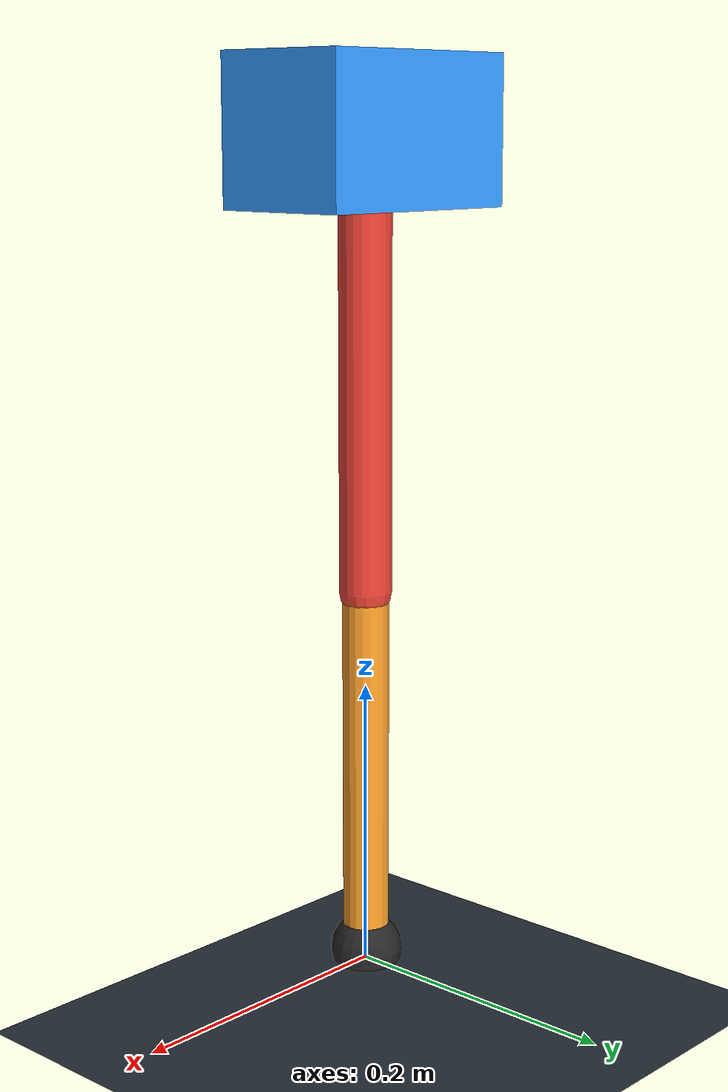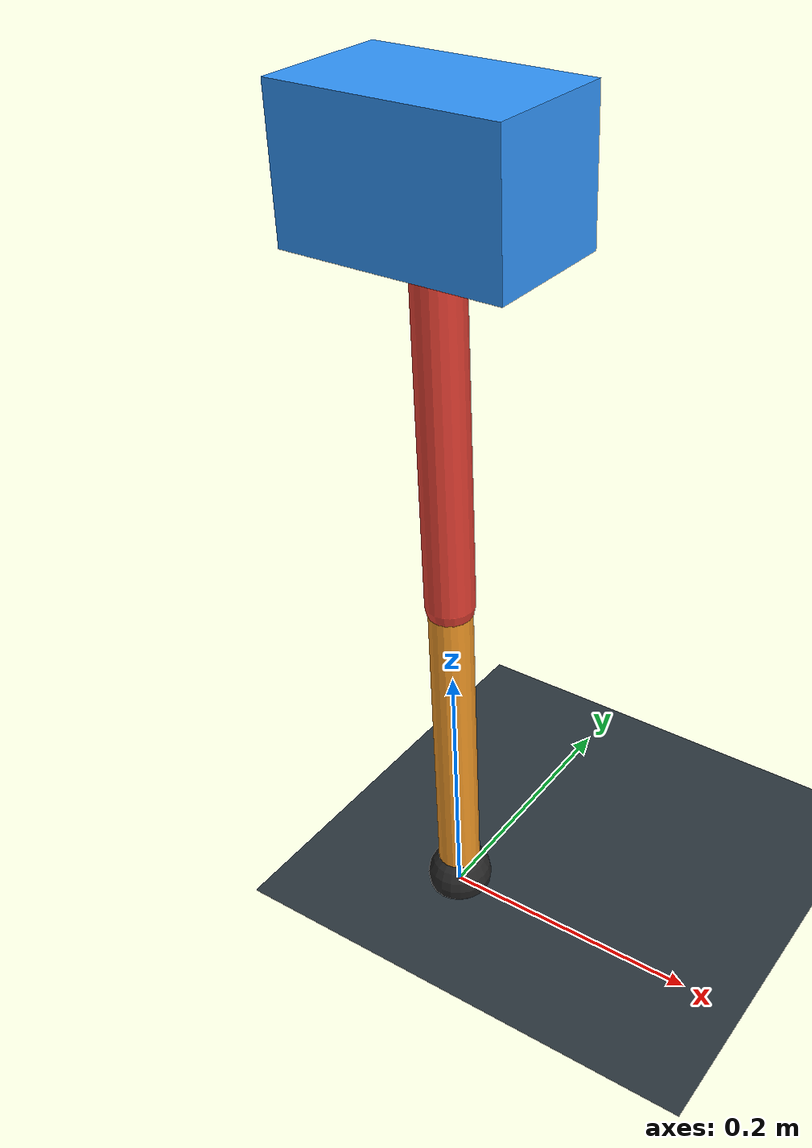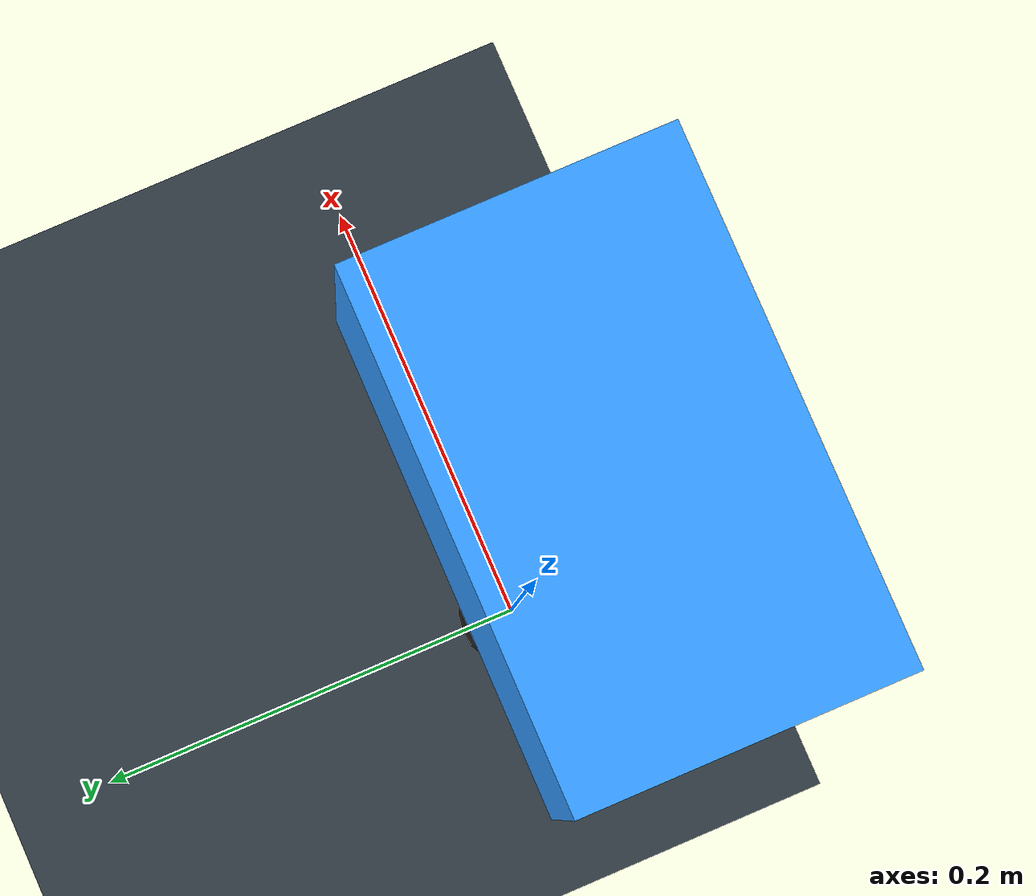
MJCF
<mujoco model="single_axis_two_bar">
  <compiler angle="radian" inertiafromgeom="true"/>
  <option timestep="0.001" integrator="implicitfast" gravity="0 0 -9.81"/>
  <default>
    <joint damping="0.08"/>
    <geom friction="1.2 0.01 0.0001" condim="3"/>
  </default>
  <worldbody>
    <geom name="floor" type="plane" size="5 5 0.1" rgba="0.18 0.22 0.25 1"/>
    <body name="carriage" pos="0 0 0.5742008342330795">
      <joint name="pole_slide" type="slide" axis="0 0 1"/>
      <geom name="payload" type="box" size="0.08 0.05 0.05" mass="2.069596335583527" rgba="0.2 0.6 1 1"/>
      <body name="thigh" pos="0 0 0">
        <joint name="hip" type="hinge" axis="0 1 0"/>
        <geom name="thigh_link" type="capsule" fromto="0 0 0 0 0 -0.3074457004556356" size="0.018" mass="0.2190591241111409" rgba="0.9 0.25 0.2 1"/>
        <body name="shank" pos="0 0 -0.3074457004556356">
          <joint name="knee" type="hinge" axis="0 1 0"/>
          <geom name="shank_link" type="capsule" fromto="0 0 0 0 0 -0.25874072658877634" size="0.016" mass="0.18435618665155604" rgba="0.95 0.6 0.15 1"/>
          <geom name="foot" type="sphere" pos="0 0 -0.25874072658877634" size="0.025" mass="0.03" rgba="0.15 0.15 0.15 1"/>
          <site name="toe" pos="0 0 -0.25874072658877634" size="0.008"/>
        </body>
      </body>
    </body>
  </worldbody>
  <actuator>
    <motor name="hip_motor" joint="hip" ctrlrange="-32.84560744033667 32.84560744033667"/>
    <motor name="knee_motor" joint="knee" ctrlrange="-27.47380063601895 27.47380063601895"/>
  </actuator>
</mujoco>
